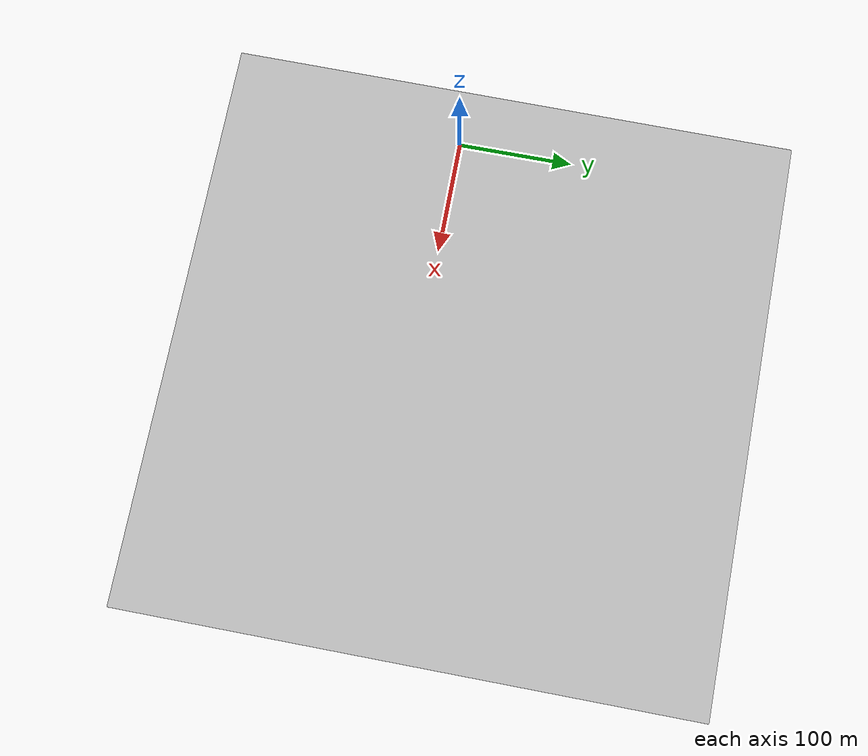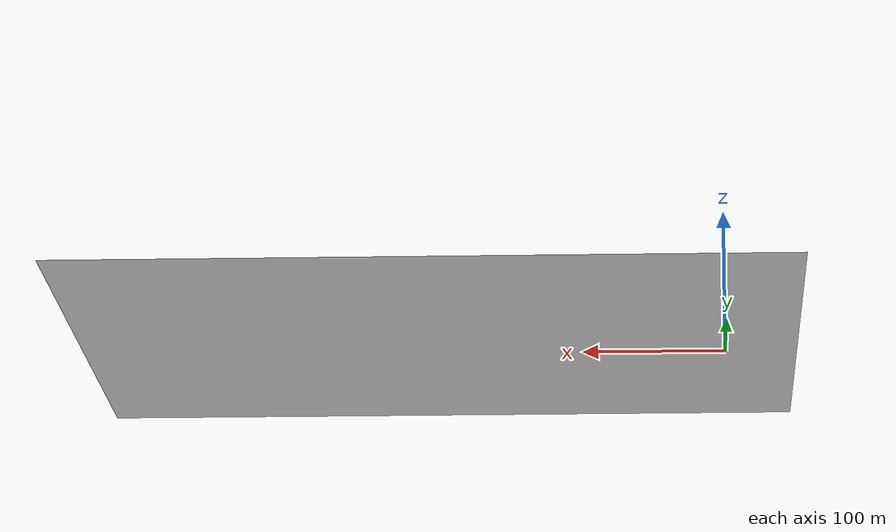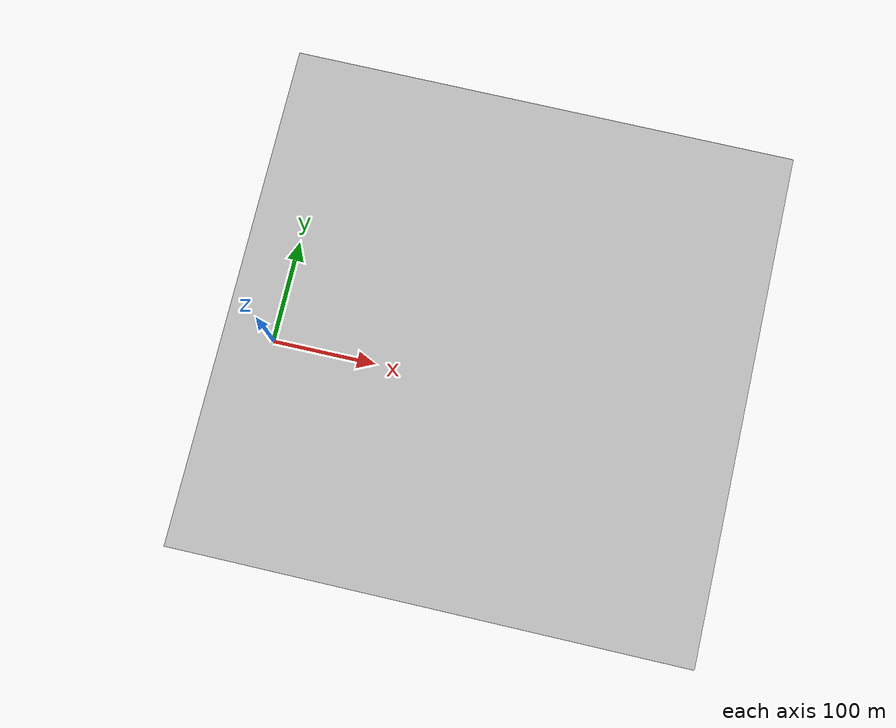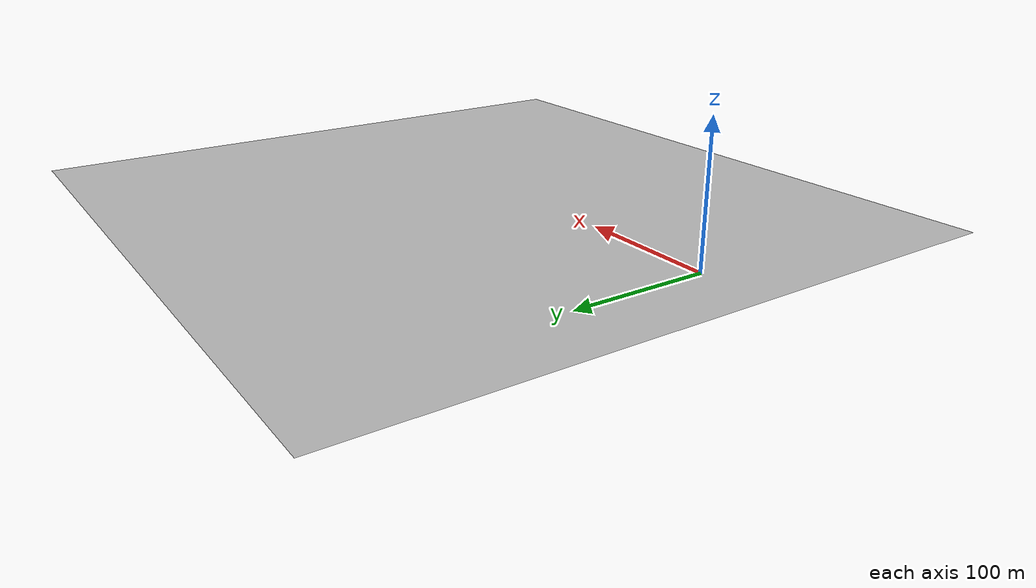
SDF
<?xml version="1.0"?>
<sdf version="1.6">
  <model name="cmra_lakefloor">
    <static>true</static>

    <link name="lakefloor_link">
      <collision name="lakefloor_collision">
        <geometry>
          <mesh>
            <uri>model://cmra_models/lakefloor/lakefloor.obj</uri>
            <scale>2 2 1</scale>
          </mesh>
        </geometry>
      </collision>

      <visual name="lakefloor_visual">
        <geometry>
          <mesh>
            <uri>model://cmra_models/lakefloor/lakefloor.obj</uri>
            <scale>2 2 1</scale>
          </mesh>
        </geometry>
      </visual>
    </link>
  </model>
</sdf>
